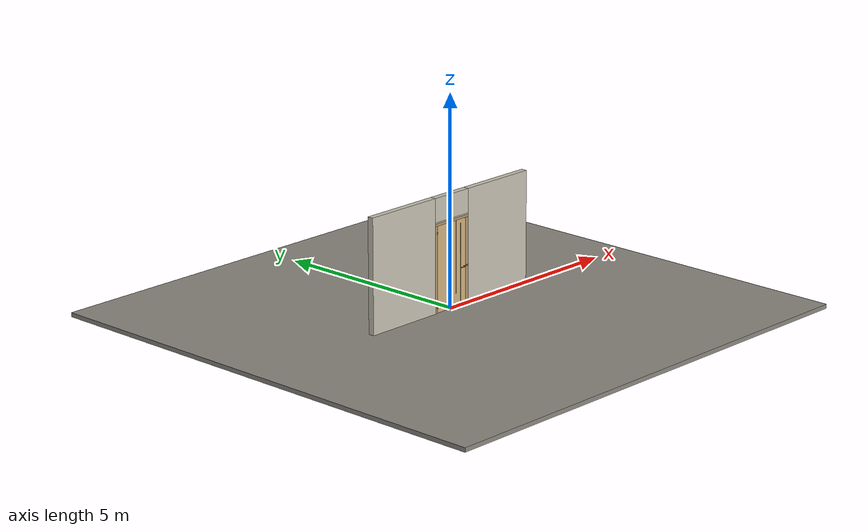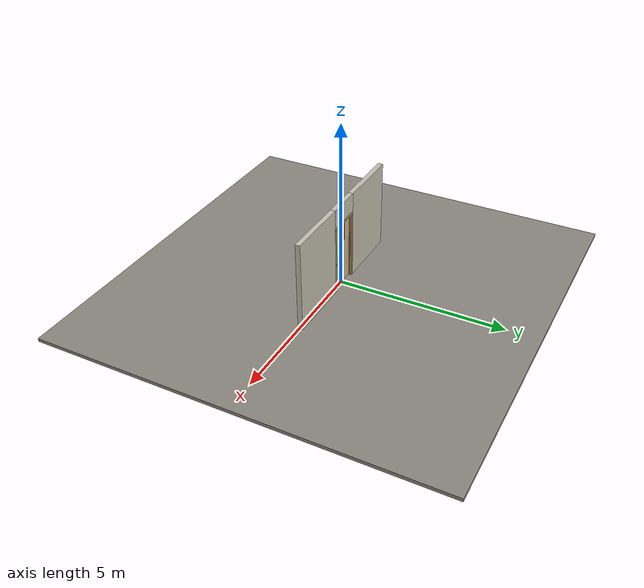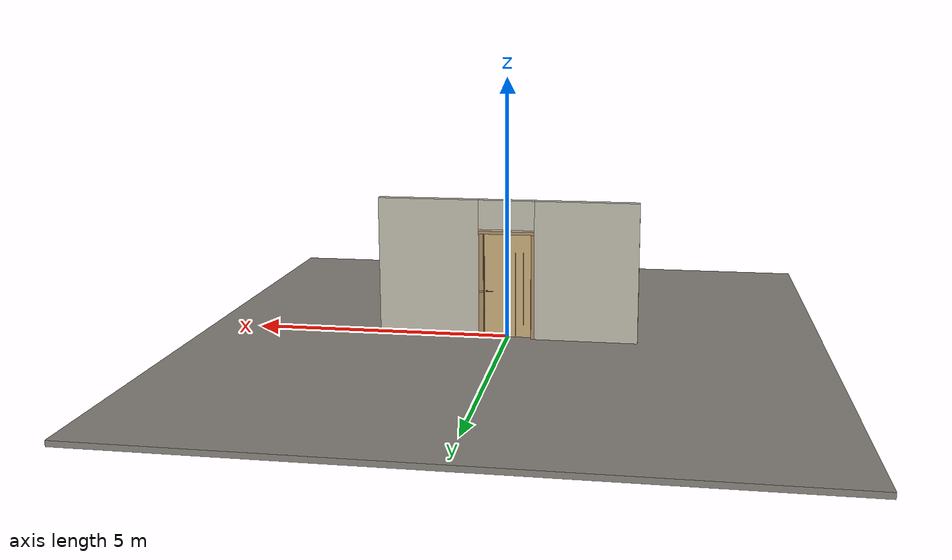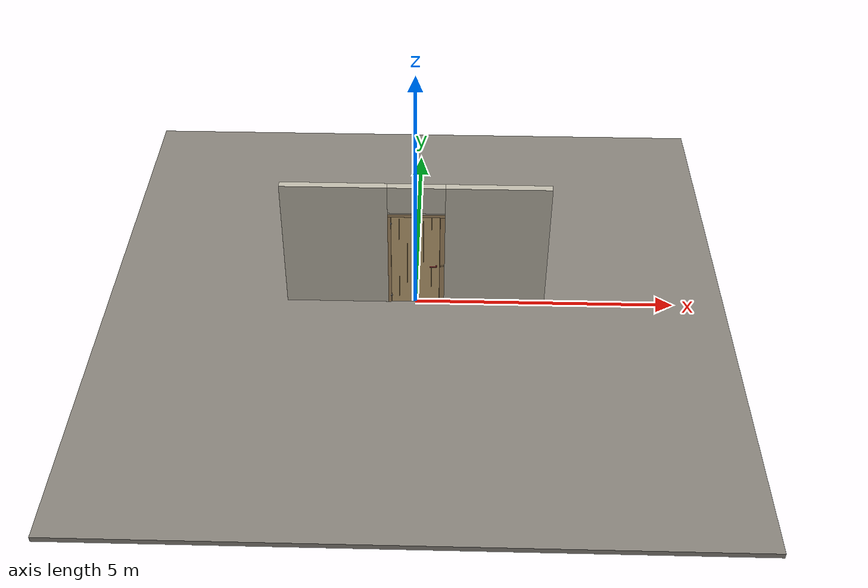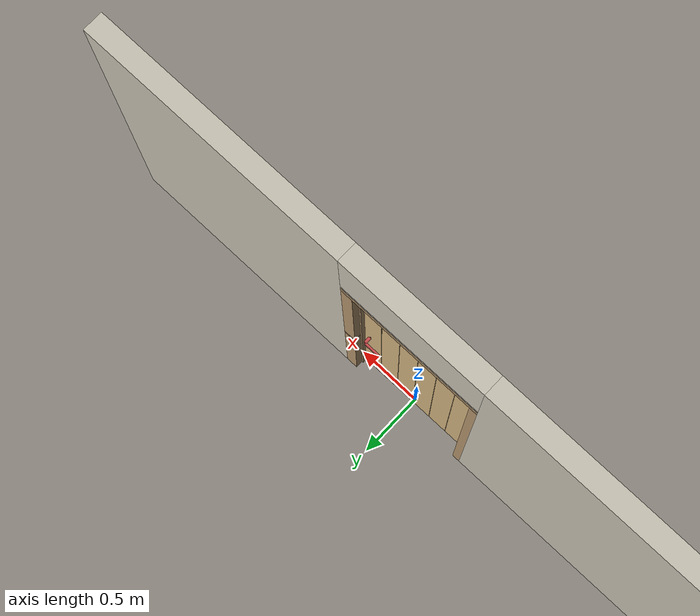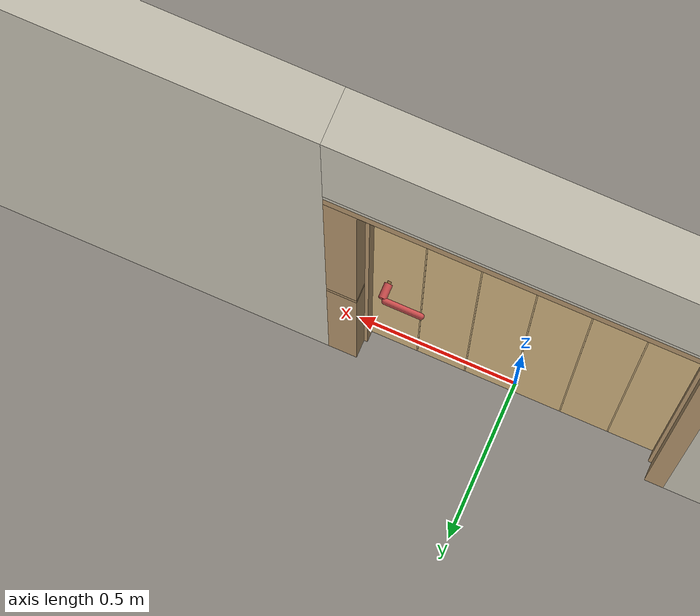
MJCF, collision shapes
<?xml version="1.0" ?>
<mujoco model="db0850_swing_single_full">
  <compiler angle="radian" meshdir="../../hardware" texturedir="../../textures" autolimits="true" inertiafromgeom="false"/>
  <option timestep="0.002" integrator="implicitfast" cone="elliptic" impratio="10" noslip_iterations="3">
    <flag multiccd="enable"/>
  </option>
  <size memory="16M"/>
  <default>
    <geom condim="4" solref="0.005 1" solimp="0.95 0.99 0.001"/>
    <joint solreflimit="0.005 1" solimplimit="0.95 0.99 0.001"/>
    <tendon solreflimit="0.005 1"/>
    <equality solref="0.002 1"/>
  </default>
  <visual>
    <headlight ambient="0.4 0.4 0.4" diffuse="0.7 0.7 0.7" specular="0.2 0.2 0.2"/>
    <quality shadowsize="4096"/>
    <map znear="0.01" zfar="60"/>
  </visual>
  <asset>
    <mesh name="lever_9f02b544cf" file="lever_9f02b544cf.obj"/>
    <mesh name="strap_hinge_78d1bbb966" file="strap_hinge_78d1bbb966.obj"/>
    <material name="mat_floor" rgba="0.55 0.53 0.5 1" specular="0.2" shininess="0.15" reflectance="0"/>
    <material name="mat_wall" rgba="0.78 0.76 0.7 1" specular="0.2" shininess="0.1" reflectance="0"/>
    <material name="mat_leaf" rgba="0.82 0.7 0.5 1" specular="0.2" shininess="0.45" reflectance="0"/>
    <material name="mat_leaf_brace" rgba="0.738 0.63 0.45 1" specular="0.2" shininess="0.2" reflectance="0"/>
    <material name="mat_hinge" rgba="0.65 0.66 0.68 1" specular="0.74" shininess="0.5" reflectance="0.36"/>
    <material name="mat_op_brass_antique" rgba="0.55 0.42 0.22 1" specular="0.74" shininess="0.45" reflectance="0.36"/>
    <material name="mat_trim" rgba="0.85 0.66 0.3 1" specular="0.8" shininess="0.75" reflectance="0.4"/>
    <material name="mat_bolt" rgba="0.75 0.76 0.77 1" specular="0.8" shininess="0.65" reflectance="0.4"/>
    <material name="mat_frame" rgba="0.7 0.58 0.42 1" specular="0.2" shininess="0.5" reflectance="0"/>
    <texture name="skybox" type="skybox" builtin="gradient" rgb1="0.6 0.7 0.85" rgb2="0.9 0.92 0.95" width="256" height="256"/>
  </asset>
  <worldbody>
    <light name="sun" pos="1.5 -2.5 4" dir="-0.3 0.5 -0.8" directional="true" diffuse="0.8 0.8 0.8" specular="0.3 0.3 0.3" castshadow="true"/>
    <light name="fill" pos="-1.5 2.5 3" dir="0.3 -0.5 -0.7" directional="true" diffuse="0.35 0.35 0.4" castshadow="false"/>
    <camera name="robot_view" pos="0 -2.501687 1.734312" xyaxes="1 0 0 0 0.26963 0.962964" fovy="52"/>
    <camera name="far_view" pos="0 2.582688 1.734312" xyaxes="-1 0 0 0 -0.26963 0.962964" fovy="52"/>
    <camera name="iso" pos="1.932062 -2.094937 2.141063" xyaxes="0.741536 0.670913 0 -0.242917 0.268487 0.932151" fovy="46"/>
    <camera name="detail_handle" pos="0.481 -0.88 1.194" xyaxes="0.97561 0.219512 0 -0.070934 0.315262 0.94635" fovy="38"/>
    <geom name="floor" type="box" size="6 6 0.05" pos="0 0 -0.05" material="mat_floor" group="0" contype="1" conaffinity="1" friction="0.8 0.005 0.0001" density="2400"/>
    <geom name="wall_left" type="box" size="0.9895 0.0725 1.35" pos="-1.5105 0.0405 1.35" material="mat_wall" group="0" contype="1" conaffinity="1" friction="0.6 0.005 0.0001" density="800"/>
    <geom name="wall_right" type="box" size="0.9745 0.0725 1.35" pos="1.5255 0.0405 1.35" material="mat_wall" group="0" contype="1" conaffinity="1" friction="0.6 0.005 0.0001" density="800"/>
    <geom name="wall_header" type="box" size="0.536 0.0725 0.2825" pos="0.015 0.0405 2.4175" material="mat_wall" group="0" contype="1" conaffinity="1" friction="0.6 0.005 0.0001" density="800"/>
    <geom name="hinge_pintle_0" type="cylinder" size="0.008 0.02" pos="-0.458 -0.032 0.133" material="mat_hinge" group="1" contype="0" conaffinity="0" density="7850"/>
    <geom name="hinge_pintle_1" type="cylinder" size="0.008 0.02" pos="-0.458 -0.032 1.865" material="mat_hinge" group="1" contype="0" conaffinity="0" density="7850"/>
    <geom name="jamb_hinge" type="box" size="0.03 0.0725 1.0225" pos="-0.491 0.0405 1.0225" material="mat_frame" group="0" contype="1" conaffinity="1" friction="0.6 0.005 0.0001" density="750"/>
    <geom name="strike_914_wall_n" type="box" size="0.045 0.05325 0.015" pos="0.506 0.05975 0.914" material="mat_frame" group="0" contype="1" conaffinity="1" friction="0.6 0.005 0.0001" density="750"/>
    <geom name="strike_914_wall_p" type="box" size="0.045 0.008 0.015" pos="0.506 -0.0145 0.914" material="mat_frame" group="0" contype="1" conaffinity="1" friction="0.6 0.005 0.0001" density="750"/>
    <geom name="strike_914_ramp" type="box" size="0.045 0.016771 0.015" pos="0.508749 -0.017375 0.914" quat="0.973249 0 0 0.229753" material="mat_frame" group="0" contype="1" conaffinity="1" friction="0.12 0.005 0.0001" density="750"/>
    <geom name="strike_914_back" type="box" size="0.036 0.0065 0.015" pos="0.515 0 0.914" material="mat_frame" group="0" contype="1" conaffinity="1" friction="0.6 0.005 0.0001" density="750"/>
    <geom name="jamb_strike_0" type="box" size="0.045 0.0725 0.4495" pos="0.506 0.0405 0.4495" material="mat_frame" group="0" contype="1" conaffinity="1" friction="0.6 0.005 0.0001" density="750"/>
    <geom name="jamb_strike_1" type="box" size="0.045 0.0725 0.558" pos="0.506 0.0405 1.487" material="mat_frame" group="0" contype="1" conaffinity="1" friction="0.6 0.005 0.0001" density="750"/>
    <geom name="jamb_head" type="box" size="0.536 0.0725 0.03" pos="0.015 0.0405 2.075" material="mat_frame" group="0" contype="1" conaffinity="1" friction="0.6 0.005 0.0001" density="750"/>
    <geom name="head_stud" type="box" size="0.536 0.0725 0.015" pos="0.015 0.0405 2.12" material="mat_wall" group="0" contype="1" conaffinity="1" friction="0.6 0.005 0.0001" density="500"/>
    <geom name="stop_hinge" type="box" size="0.0055 0.016 1.0225" pos="-0.4555 0.0415 1.0225" material="mat_frame" group="0" contype="1" conaffinity="1" friction="0.6 0.005 0.0001" density="750"/>
    <geom name="stop_strike" type="box" size="0.0055 0.016 1.0225" pos="0.4555 0.0415 1.0225" material="mat_frame" group="0" contype="1" conaffinity="1" friction="0.6 0.005 0.0001" density="750"/>
    <geom name="stop_head" type="box" size="0.461 0.016 0.0055" pos="0 0.0415 2.0395" material="mat_frame" group="0" contype="1" conaffinity="1" friction="0.6 0.005 0.0001" density="750"/>
    <geom name="hinge_pintle_0_strap_0" type="box" size="0.0064 0.02525 0.016" pos="-0.458 0.00075 0.133" material="mat_hinge" group="1" contype="0" conaffinity="0" density="7850"/>
    <geom name="hinge_pintle_1_strap_0" type="box" size="0.0064 0.02525 0.016" pos="-0.458 0.00075 1.865" material="mat_hinge" group="1" contype="0" conaffinity="0" density="7850"/>
    <site name="approach_point" pos="0 -1.5 0" quat="1 0 0 0" size="0.05" rgba="0.2 0.9 0.2 0.5" group="4"/>
    <site name="goal_point" pos="0 1.5 0" quat="1 0 0 0" size="0.05" rgba="0.2 0.9 0.2 0.5" group="4"/>
    <site name="door_plane_center" pos="0 0 1.0225" quat="1 0 0 0" size="0.02" rgba="0.2 0.9 0.2 0.5" group="4"/>
    <body name="leaf" pos="-0.461 0 0">
      <inertial pos="0.444099 -0.001431 1.024968" mass="39.134298" quat="0.498462 0.501507 -0.498488 0.501533" diaginertia="2.807744237 14.273266713 17.062634403"/>
      <joint name="leaf_hinge" type="hinge" axis="0 0 -1" pos="0.003 -0.032 0" limited="true" range="0 1.745329" damping="0.30611" frictionloss="3.703899" armature="0.02"/>
      <geom name="leaf_slab" type="box" size="0.457 0.025 1.016" pos="0.46 0 1.025" material="mat_leaf" group="0" contype="1" conaffinity="1" friction="0.35 0.005 0.0001" density="1"/>
      <geom name="leaf_plank_gap_1" type="box" size="0.002 0.026 1.006" pos="0.155333 0 1.025" material="mat_leaf_brace" group="1" contype="0" conaffinity="0" density="1"/>
      <geom name="leaf_plank_gap_2" type="box" size="0.002 0.026 1.006" pos="0.307667 0 1.025" material="mat_leaf_brace" group="1" contype="0" conaffinity="0" density="1"/>
      <geom name="leaf_plank_gap_3" type="box" size="0.002 0.026 1.006" pos="0.46 0 1.025" material="mat_leaf_brace" group="1" contype="0" conaffinity="0" density="1"/>
      <geom name="leaf_plank_gap_4" type="box" size="0.002 0.026 1.006" pos="0.612333 0 1.025" material="mat_leaf_brace" group="1" contype="0" conaffinity="0" density="1"/>
      <geom name="leaf_plank_gap_5" type="box" size="0.002 0.026 1.006" pos="0.764667 0 1.025" material="mat_leaf_brace" group="1" contype="0" conaffinity="0" density="1"/>
      <geom name="hinge_strap_0" type="mesh" mesh="strap_hinge_78d1bbb966" pos="0.003 -0.028 0.159" material="mat_hinge" group="1" contype="0" conaffinity="0" density="7850"/>
      <geom name="hinge_strap_eye_0" type="cylinder" size="0.011 0.012" pos="0.003 -0.032 0.159" material="mat_hinge" group="1" contype="0" conaffinity="0" density="7850"/>
      <geom name="hinge_strap_neck_0" type="box" size="0.012 0.006 0.006" pos="0.003 -0.03 0.159" material="mat_hinge" group="1" contype="0" conaffinity="0" density="7850"/>
      <geom name="hinge_strap_1" type="mesh" mesh="strap_hinge_78d1bbb966" pos="0.003 -0.028 1.891" material="mat_hinge" group="1" contype="0" conaffinity="0" density="7850"/>
      <geom name="hinge_strap_eye_1" type="cylinder" size="0.011 0.012" pos="0.003 -0.032 1.891" material="mat_hinge" group="1" contype="0" conaffinity="0" density="7850"/>
      <geom name="hinge_strap_neck_1" type="box" size="0.012 0.006 0.006" pos="0.003 -0.03 1.891" material="mat_hinge" group="1" contype="0" conaffinity="0" density="7850"/>
      <geom name="leaf_latch_bolt_faceplate" type="box" size="0.0006 0.011 0.025" pos="0.9164 0 0.914" material="mat_bolt" group="1" contype="0" conaffinity="0" density="8500"/>
      <site name="leaf_edge_mid" pos="0.917 0 1.016" quat="1 0 0 0" size="0.02" rgba="0.2 0.9 0.2 0.5" group="4"/>
      <body name="leaf_handle" pos="0.862 0 0.914">
        <inertial pos="-0.028389 0 0" mass="0.983513" quat="0.707107 0 0 -0.707107" diaginertia="0.001776459 0.003936766 0.005534927"/>
        <joint name="leaf_handle_hinge" type="hinge" axis="0 -1 0" limited="true" range="0 0.96" damping="0.200552" frictionloss="0.046" stiffness="0.8" springref="-0.577217" armature="0.01"/>
        <geom name="leaf_handle_spindle" type="cylinder" size="0.006 0.033" pos="0 0 0" quat="0.707107 -0.707107 0 0" material="mat_op_brass_antique" group="1" contype="0" conaffinity="0" density="7850"/>
        <geom name="leaf_handle_lever_n" type="mesh" mesh="lever_9f02b544cf" pos="0 -0.025 0" quat="0.707107 0.707107 0 0" material="mat_op_brass_antique" group="1" contype="0" conaffinity="0" density="3000"/>
        <geom name="leaf_handle_lever_col_n" type="capsule" size="0.0095 0.053" pos="-0.0625 -0.08 0" quat="0.707107 0 -0.707107 0" material="mat_op_brass_antique" group="3" contype="1" conaffinity="1" rgba="0.8 0.3 0.3 0.25" friction="0.7 0.01 0.0001" density="3000"/>
        <geom name="leaf_handle_hub_col_n" type="cylinder" size="0.012 0.022" pos="0 -0.055 0" quat="0.707107 -0.707107 0 0" material="mat_op_brass_antique" group="3" contype="1" conaffinity="1" rgba="0.8 0.3 0.3 0.25" friction="0.6 0.005 0.0001" density="3000"/>
        <geom name="leaf_handle_lever_p" type="mesh" mesh="lever_9f02b544cf" pos="0 0.025 0" quat="-0.707107 0.707107 0 0" material="mat_op_brass_antique" group="1" contype="0" conaffinity="0" density="3000"/>
        <geom name="leaf_handle_lever_col_p" type="capsule" size="0.0095 0.053" pos="-0.0625 0.08 0" quat="0.707107 0 -0.707107 0" material="mat_op_brass_antique" group="3" contype="1" conaffinity="1" rgba="0.8 0.3 0.3 0.25" friction="0.7 0.01 0.0001" density="3000"/>
        <geom name="leaf_handle_hub_col_p" type="cylinder" size="0.012 0.022" pos="0 0.055 0" quat="0.707107 -0.707107 0 0" material="mat_op_brass_antique" group="3" contype="1" conaffinity="1" rgba="0.8 0.3 0.3 0.25" friction="0.6 0.005 0.0001" density="3000"/>
        <site name="leaf_handle_grip_n" pos="-0.1 -0.08 0" quat="1 0 0 0" size="0.012" rgba="0.2 0.9 0.2 0.5" group="4"/>
        <site name="leaf_handle_grip_p" pos="-0.1 0.08 0" quat="1 0 0 0" size="0.012" rgba="0.2 0.9 0.2 0.5" group="4"/>
      </body>
      <body name="leaf_latch_bolt" pos="0.917 0 0.914">
        <inertial pos="-0.008 0 0" mass="0.027149" quat="0 0 0.707107 0.707107" diaginertia="0.000000328 0.000003943 0.000003943"/>
        <joint name="leaf_latch_bolt_slide" type="slide" axis="-1 0 0" limited="true" range="0 0.014" damping="2" frictionloss="0.3" stiffness="400" springref="-0.01" armature="0.1"/>
        <geom name="leaf_latch_bolt_capsule" type="capsule" size="0.005 0.017" pos="-0.008 0 0" quat="0.707107 0 0.707107 0" material="mat_bolt" group="0" contype="1" conaffinity="1" friction="0.2 0.005 0.0001" density="8500"/>
      </body>
    </body>
  </worldbody>
  <tendon>
    <fixed name="leaf_latch_bolt_coupling" limited="true" range="0 10">
      <joint joint="leaf_latch_bolt_slide" coef="1"/>
      <joint joint="leaf_handle_hinge" coef="-0.018421"/>
    </fixed>
  </tendon>
  <sensor>
    <jointpos name="leaf_hinge_pos" joint="leaf_hinge"/>
    <jointvel name="leaf_hinge_vel" joint="leaf_hinge"/>
    <jointpos name="leaf_handle_hinge_pos" joint="leaf_handle_hinge"/>
    <jointvel name="leaf_handle_hinge_vel" joint="leaf_handle_hinge"/>
    <jointpos name="leaf_latch_bolt_slide_pos" joint="leaf_latch_bolt_slide"/>
    <jointvel name="leaf_latch_bolt_slide_vel" joint="leaf_latch_bolt_slide"/>
  </sensor>
</mujoco>
